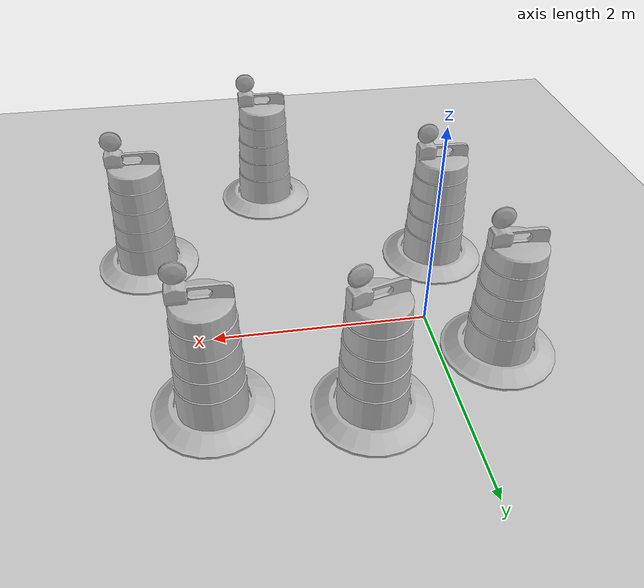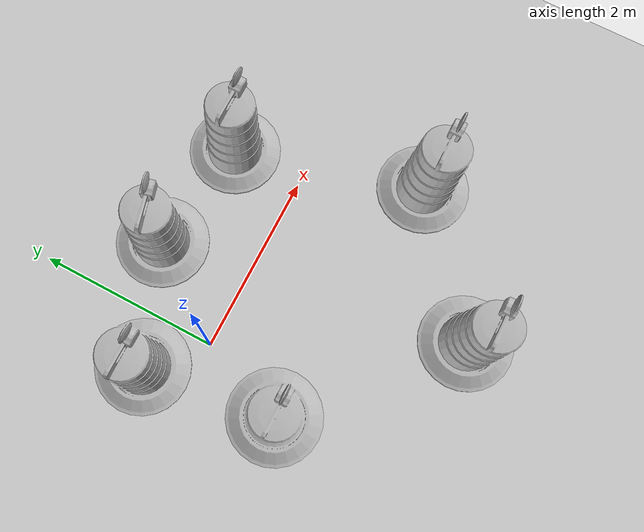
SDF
<sdf version="1.7">
 <world name="default">
  <light name="sun" type="directional">
   <pose>0 0 10 0 -0 0</pose>
   <diffuse>0.8 0.8 0.8 1</diffuse>
   <specular>0.2 0.2 0.2 1</specular>
   <attenuation>
    <range>1000</range>
    <constant>0.9</constant>
    <linear>0.01</linear>
    <quadratic>0.001</quadratic>
   </attenuation>
   <direction>-0.5 0.1 -0.9</direction>
   <spot><inner_angle>0</inner_angle><outer_angle>0</outer_angle><falloff>0</falloff></spot>
  </light>
  <model name="ground_plane">
   <static>1</static>
   <link name="link">
    <collision name="collision">
     <geometry><plane><normal>0 0 1</normal><size>100 100</size></plane></geometry>
     <surface><friction><ode><mu>100</mu><mu2>50</mu2></ode></friction></surface>
    </collision>
    <visual name="visual">
     <cast_shadows>0</cast_shadows>
     <geometry><plane><normal>0 0 1</normal><size>100 100</size></plane></geometry>
     <material>
      <script><uri>file://media/materials/scripts/gazebo.material</uri><name>Gazebo/Grey</name></script>
     </material>
    </visual>
   </link>
  </model>
  <gravity>0 0 -9.8</gravity>
  <magnetic_field>6e-06 2.3e-05 -4.2e-05</magnetic_field>
  <atmosphere type="adiabatic"/>
  <physics type="ode">
   <max_step_size>0.001</max_step_size>
   <real_time_factor>1</real_time_factor>
   <real_time_update_rate>1000</real_time_update_rate>
  </physics>
  <scene><ambient>0.4 0.4 0.4 1</ambient><background>0.7 0.7 0.7 1</background><shadows>1</shadows></scene>
  <audio><device>default</device></audio>
  <spherical_coordinates>
   <surface_model>EARTH_WGS84</surface_model>
   <latitude_deg>0</latitude_deg>
   <longitude_deg>0</longitude_deg>
   <elevation>0</elevation>
   <heading_deg>0</heading_deg>
  </spherical_coordinates>
  <model name="Construction Barrel">
   <link name="link">
    <inertial>
     <pose>0 0 0.4 0 -0 0</pose>
     <mass>500</mass>
     <inertia><ixx>51.2096</ixx><iyy>51.2096</iyy><izz>25</izz><ixy>0</ixy><ixz>0</ixz><iyz>0</iyz></inertia>
    </inertial>
    <collision name="collision">
     <geometry><mesh><uri>model://construction_barrel/meshes/construction_barrel.dae</uri></mesh></geometry>
    </collision>
    <visual name="visual">
     <geometry><mesh><uri>model://construction_barrel/meshes/construction_barrel.dae</uri></mesh></geometry>
    </visual>
   </link>
   <pose>1.27087 -2.36558 -2e-06 1e-06 8e-06 -0.000554</pose>
  </model>
  <model name="Construction Barrel_clone">
   <link name="link">
    <inertial>
     <pose>0 0 0.4 0 -0 0</pose>
     <mass>500</mass>
     <inertia><ixx>51.2096</ixx><iyy>51.2096</iyy><izz>25</izz><ixy>0</ixy><ixz>0</ixz><iyz>0</iyz></inertia>
    </inertial>
    <collision name="collision">
     <geometry><mesh><uri>model://construction_barrel/meshes/construction_barrel.dae</uri></mesh></geometry>
    </collision>
    <visual name="visual">
     <geometry><mesh><uri>model://construction_barrel/meshes/construction_barrel.dae</uri></mesh></geometry>
    </visual>
   </link>
   <pose>2.03586 0.811757 -2e-06 -7e-06 -4e-06 0.002788</pose>
  </model>
  <model name="Construction Barrel_clone_0">
   <link name="link">
    <inertial>
     <pose>0 0 0.4 0 -0 0</pose>
     <mass>500</mass>
     <inertia><ixx>51.2096</ixx><iyy>51.2096</iyy><izz>25</izz><ixy>0</ixy><ixz>0</ixz><iyz>0</iyz></inertia>
    </inertial>
    <collision name="collision">
     <geometry><mesh><uri>model://construction_barrel/meshes/construction_barrel.dae</uri></mesh></geometry>
    </collision>
    <visual name="visual">
     <geometry><mesh><uri>model://construction_barrel/meshes/construction_barrel.dae</uri></mesh></geometry>
    </visual>
   </link>
   <pose>2.60741 -1.23867 0 0 0 -0.000552</pose>
  </model>
  <model name="Construction Barrel_clone_1">
   <link name="link">
    <inertial>
     <pose>0 0 0.4 0 -0 0</pose>
     <mass>500</mass>
     <inertia><ixx>51.2096</ixx><iyy>51.2096</iyy><izz>25</izz><ixy>0</ixy><ixz>0</ixz><iyz>0</iyz></inertia>
    </inertial>
    <collision name="collision">
     <geometry><mesh><uri>model://construction_barrel/meshes/construction_barrel.dae</uri></mesh></geometry>
    </collision>
    <visual name="visual">
     <geometry><mesh><uri>model://construction_barrel/meshes/construction_barrel.dae</uri></mesh></geometry>
    </visual>
   </link>
   <pose>-0.529603 0.511583 -1e-06 4e-06 -2e-06 -0.000551</pose>
  </model>
  <model name="Construction Barrel_clone_2">
   <link name="link">
    <inertial>
     <pose>0 0 0.4 0 -0 0</pose>
     <mass>500</mass>
     <inertia><ixx>51.2096</ixx><iyy>51.2096</iyy><izz>25</izz><ixy>0</ixy><ixz>0</ixz><iyz>0</iyz></inertia>
    </inertial>
    <collision name="collision">
     <geometry><mesh><uri>model://construction_barrel/meshes/construction_barrel.dae</uri></mesh></geometry>
    </collision>
    <visual name="visual">
     <geometry><mesh><uri>model://construction_barrel/meshes/construction_barrel.dae</uri></mesh></geometry>
    </visual>
   </link>
   <pose>-0.345523 -0.943226 0 0 0 -0.000547</pose>
  </model>
  <model name="Construction Barrel_clone_3">
   <link name="link">
    <inertial>
     <pose>0 0 0.4 0 -0 0</pose>
     <mass>500</mass>
     <inertia><ixx>51.2096</ixx><iyy>51.2096</iyy><izz>25</izz><ixy>0</ixy><ixz>0</ixz><iyz>0</iyz></inertia>
    </inertial>
    <collision name="collision">
     <geometry><mesh><uri>model://construction_barrel/meshes/construction_barrel.dae</uri></mesh></geometry>
    </collision>
    <visual name="visual">
     <geometry><mesh><uri>model://construction_barrel/meshes/construction_barrel.dae</uri></mesh></geometry>
    </visual>
   </link>
   <pose>0.738149 1.00166 -2e-06 8e-06 -4e-06 0.261563</pose>
  </model>
 </world>
</sdf>
